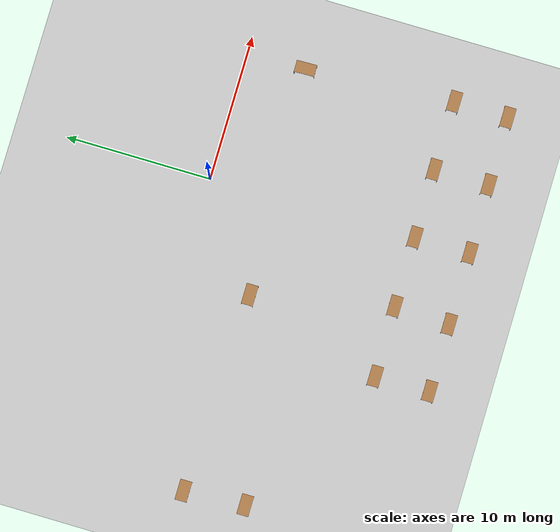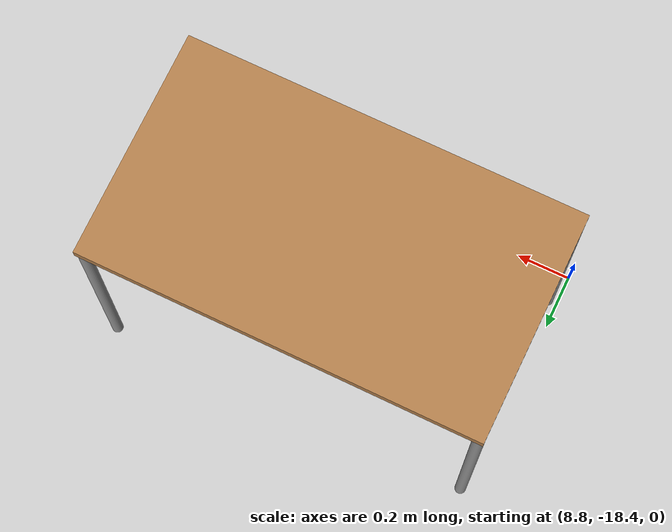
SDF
<sdf version="1.6">
 <world name="default">
  <model name="ground_plane">
   <static>1</static>
   <link name="link">
    <collision name="collision">
     <geometry><plane><normal>0 0 1</normal><size>100 100</size></plane></geometry>
     <surface><friction><ode><mu>100</mu><mu2>50</mu2></ode></friction></surface>
    </collision>
    <visual name="visual">
     <cast_shadows>0</cast_shadows>
     <geometry><plane><normal>0 0 1</normal><size>100 100</size></plane></geometry>
     <material>
      <script><uri>file://media/materials/scripts/gazebo.material</uri><name>Gazebo/Grey</name></script>
     </material>
    </visual>
   </link>
  </model>
  <model name="table">
   <static>0</static>
   <link name="link">
    <collision name="surface">
     <pose>0 0 1 0 -0 0</pose>
     <geometry><box><size>1.5 0.8 0.03</size></box></geometry>
     <surface><friction><ode><mu>0.6</mu><mu2>0.6</mu2></ode></friction></surface>
    </collision>
    <visual name="visual1">
     <pose>0 0 1 0 -0 0</pose>
     <geometry><box><size>1.4 0.8 0.04</size></box></geometry>
     <material>
      <script><uri>file://media/materials/scripts/gazebo.material</uri><name>Gazebo/Wood</name></script>
     </material>
    </visual>
    <collision name="front_left_leg">
     <pose>0.68 0.38 0.5 0 -0 0</pose>
     <geometry><cylinder><radius>0.02</radius><length>1</length></cylinder></geometry>
    </collision>
    <visual name="front_left_leg">
     <pose>0.68 0.38 0.5 0 -0 0</pose>
     <geometry><cylinder><radius>0.02</radius><length>1</length></cylinder></geometry>
     <material>
      <script><uri>file://media/materials/scripts/gazebo.material</uri><name>Gazebo/Grey</name></script>
     </material>
    </visual>
    <collision name="front_right_leg">
     <pose>0.68 -0.38 0.5 0 -0 0</pose>
     <geometry><cylinder><radius>0.02</radius><length>1</length></cylinder></geometry>
    </collision>
    <visual name="front_right_leg">
     <pose>0.68 -0.38 0.5 0 -0 0</pose>
     <geometry><cylinder><radius>0.02</radius><length>1</length></cylinder></geometry>
     <material>
      <script><uri>file://media/materials/scripts/gazebo.material</uri><name>Gazebo/Grey</name></script>
     </material>
    </visual>
    <collision name="back_right_leg">
     <pose>-0.68 -0.38 0.5 0 -0 0</pose>
     <geometry><cylinder><radius>0.02</radius><length>1</length></cylinder></geometry>
    </collision>
    <visual name="back_right_leg">
     <pose>-0.68 -0.38 0.5 0 -0 0</pose>
     <geometry><cylinder><radius>0.02</radius><length>1</length></cylinder></geometry>
     <material>
      <script><uri>file://media/materials/scripts/gazebo.material</uri><name>Gazebo/Grey</name></script>
     </material>
    </visual>
    <collision name="back_left_leg">
     <pose>-0.68 0.38 0.5 0 -0 0</pose>
     <geometry><cylinder><radius>0.02</radius><length>1</length></cylinder></geometry>
    </collision>
    <visual name="back_left_leg">
     <pose>-0.68 0.38 0.5 0 -0 0</pose>
     <geometry><cylinder><radius>0.02</radius><length>1</length></cylinder></geometry>
     <material>
      <script><uri>file://media/materials/scripts/gazebo.material</uri><name>Gazebo/Grey</name></script>
     </material>
    </visual>
    <inertial>
     <inertia><ixx>1</ixx><ixy>0</ixy><ixz>0</ixz><iyy>1</iyy><iyz>0</iyz><izz>1</izz></inertia>
     <mass>1</mass>
    </inertial>
   </link>
   <pose>-9.57196 -14.2734 -1e-06 0 1e-06 0</pose>
  </model>
  <model name="table_clone_clone">
   <static>0</static>
   <link name="link">
    <collision name="surface">
     <pose>0 0 1 0 -0 0</pose>
     <geometry><box><size>1.5 0.8 0.03</size></box></geometry>
     <surface><friction><ode><mu>0.6</mu><mu2>0.6</mu2></ode></friction></surface>
    </collision>
    <visual name="visual1">
     <pose>0 0 1 0 -0 0</pose>
     <geometry><box><size>1.4 0.8 0.04</size></box></geometry>
     <material>
      <script><uri>file://media/materials/scripts/gazebo.material</uri><name>Gazebo/Wood</name></script>
     </material>
    </visual>
    <collision name="front_left_leg">
     <pose>0.68 0.38 0.5 0 -0 0</pose>
     <geometry><cylinder><radius>0.02</radius><length>1</length></cylinder></geometry>
    </collision>
    <visual name="front_left_leg">
     <pose>0.68 0.38 0.5 0 -0 0</pose>
     <geometry><cylinder><radius>0.02</radius><length>1</length></cylinder></geometry>
     <material>
      <script><uri>file://media/materials/scripts/gazebo.material</uri><name>Gazebo/Grey</name></script>
     </material>
    </visual>
    <collision name="front_right_leg">
     <pose>0.68 -0.38 0.5 0 -0 0</pose>
     <geometry><cylinder><radius>0.02</radius><length>1</length></cylinder></geometry>
    </collision>
    <visual name="front_right_leg">
     <pose>0.68 -0.38 0.5 0 -0 0</pose>
     <geometry><cylinder><radius>0.02</radius><length>1</length></cylinder></geometry>
     <material>
      <script><uri>file://media/materials/scripts/gazebo.material</uri><name>Gazebo/Grey</name></script>
     </material>
    </visual>
    <collision name="back_right_leg">
     <pose>-0.68 -0.38 0.5 0 -0 0</pose>
     <geometry><cylinder><radius>0.02</radius><length>1</length></cylinder></geometry>
    </collision>
    <visual name="back_right_leg">
     <pose>-0.68 -0.38 0.5 0 -0 0</pose>
     <geometry><cylinder><radius>0.02</radius><length>1</length></cylinder></geometry>
     <material>
      <script><uri>file://media/materials/scripts/gazebo.material</uri><name>Gazebo/Grey</name></script>
     </material>
    </visual>
    <collision name="back_left_leg">
     <pose>-0.68 0.38 0.5 0 -0 0</pose>
     <geometry><cylinder><radius>0.02</radius><length>1</length></cylinder></geometry>
    </collision>
    <visual name="back_left_leg">
     <pose>-0.68 0.38 0.5 0 -0 0</pose>
     <geometry><cylinder><radius>0.02</radius><length>1</length></cylinder></geometry>
     <material>
      <script><uri>file://media/materials/scripts/gazebo.material</uri><name>Gazebo/Grey</name></script>
     </material>
    </visual>
    <inertial>
     <inertia><ixx>1</ixx><ixy>0</ixy><ixz>0</ixz><iyy>1</iyy><iyz>0</iyz><izz>1</izz></inertia>
     <mass>1</mass>
    </inertial>
   </link>
   <pose>-20.428 -4.24602 -1e-06 0 1e-06 0</pose>
  </model>
  <model name="table_clone_0">
   <static>0</static>
   <link name="link">
    <collision name="surface">
     <pose>0 0 1 0 -0 0</pose>
     <geometry><box><size>1.5 0.8 0.03</size></box></geometry>
     <surface><friction><ode><mu>0.6</mu><mu2>0.6</mu2></ode></friction></surface>
    </collision>
    <visual name="visual1">
     <pose>0 0 1 0 -0 0</pose>
     <geometry><box><size>1.4 0.8 0.04</size></box></geometry>
     <material>
      <script><uri>file://media/materials/scripts/gazebo.material</uri><name>Gazebo/Wood</name></script>
     </material>
    </visual>
    <collision name="front_left_leg">
     <pose>0.68 0.38 0.5 0 -0 0</pose>
     <geometry><cylinder><radius>0.02</radius><length>1</length></cylinder></geometry>
    </collision>
    <visual name="front_left_leg">
     <pose>0.68 0.38 0.5 0 -0 0</pose>
     <geometry><cylinder><radius>0.02</radius><length>1</length></cylinder></geometry>
     <material>
      <script><uri>file://media/materials/scripts/gazebo.material</uri><name>Gazebo/Grey</name></script>
     </material>
    </visual>
    <collision name="front_right_leg">
     <pose>0.68 -0.38 0.5 0 -0 0</pose>
     <geometry><cylinder><radius>0.02</radius><length>1</length></cylinder></geometry>
    </collision>
    <visual name="front_right_leg">
     <pose>0.68 -0.38 0.5 0 -0 0</pose>
     <geometry><cylinder><radius>0.02</radius><length>1</length></cylinder></geometry>
     <material>
      <script><uri>file://media/materials/scripts/gazebo.material</uri><name>Gazebo/Grey</name></script>
     </material>
    </visual>
    <collision name="back_right_leg">
     <pose>-0.68 -0.38 0.5 0 -0 0</pose>
     <geometry><cylinder><radius>0.02</radius><length>1</length></cylinder></geometry>
    </collision>
    <visual name="back_right_leg">
     <pose>-0.68 -0.38 0.5 0 -0 0</pose>
     <geometry><cylinder><radius>0.02</radius><length>1</length></cylinder></geometry>
     <material>
      <script><uri>file://media/materials/scripts/gazebo.material</uri><name>Gazebo/Grey</name></script>
     </material>
    </visual>
    <collision name="back_left_leg">
     <pose>-0.68 0.38 0.5 0 -0 0</pose>
     <geometry><cylinder><radius>0.02</radius><length>1</length></cylinder></geometry>
    </collision>
    <visual name="back_left_leg">
     <pose>-0.68 0.38 0.5 0 -0 0</pose>
     <geometry><cylinder><radius>0.02</radius><length>1</length></cylinder></geometry>
     <material>
      <script><uri>file://media/materials/scripts/gazebo.material</uri><name>Gazebo/Grey</name></script>
     </material>
    </visual>
    <inertial>
     <inertia><ixx>1</ixx><ixy>0</ixy><ixz>0</ixz><iyy>1</iyy><iyz>0</iyz><izz>1</izz></inertia>
     <mass>1</mass>
    </inertial>
   </link>
   <pose>-20.1857 -8.43233 -1e-06 0 1e-06 0</pose>
  </model>
  <model name="table_clone_1">
   <static>0</static>
   <link name="link">
    <collision name="surface">
     <pose>0 0 1 0 -0 0</pose>
     <geometry><box><size>1.5 0.8 0.03</size></box></geometry>
     <surface><friction><ode><mu>0.6</mu><mu2>0.6</mu2></ode></friction></surface>
    </collision>
    <visual name="visual1">
     <pose>0 0 1 0 -0 0</pose>
     <geometry><box><size>1.4 0.8 0.04</size></box></geometry>
     <material>
      <script><uri>file://media/materials/scripts/gazebo.material</uri><name>Gazebo/Wood</name></script>
     </material>
    </visual>
    <collision name="front_left_leg">
     <pose>0.68 0.38 0.5 0 -0 0</pose>
     <geometry><cylinder><radius>0.02</radius><length>1</length></cylinder></geometry>
    </collision>
    <visual name="front_left_leg">
     <pose>0.68 0.38 0.5 0 -0 0</pose>
     <geometry><cylinder><radius>0.02</radius><length>1</length></cylinder></geometry>
     <material>
      <script><uri>file://media/materials/scripts/gazebo.material</uri><name>Gazebo/Grey</name></script>
     </material>
    </visual>
    <collision name="front_right_leg">
     <pose>0.68 -0.38 0.5 0 -0 0</pose>
     <geometry><cylinder><radius>0.02</radius><length>1</length></cylinder></geometry>
    </collision>
    <visual name="front_right_leg">
     <pose>0.68 -0.38 0.5 0 -0 0</pose>
     <geometry><cylinder><radius>0.02</radius><length>1</length></cylinder></geometry>
     <material>
      <script><uri>file://media/materials/scripts/gazebo.material</uri><name>Gazebo/Grey</name></script>
     </material>
    </visual>
    <collision name="back_right_leg">
     <pose>-0.68 -0.38 0.5 0 -0 0</pose>
     <geometry><cylinder><radius>0.02</radius><length>1</length></cylinder></geometry>
    </collision>
    <visual name="back_right_leg">
     <pose>-0.68 -0.38 0.5 0 -0 0</pose>
     <geometry><cylinder><radius>0.02</radius><length>1</length></cylinder></geometry>
     <material>
      <script><uri>file://media/materials/scripts/gazebo.material</uri><name>Gazebo/Grey</name></script>
     </material>
    </visual>
    <collision name="back_left_leg">
     <pose>-0.68 0.38 0.5 0 -0 0</pose>
     <geometry><cylinder><radius>0.02</radius><length>1</length></cylinder></geometry>
    </collision>
    <visual name="back_left_leg">
     <pose>-0.68 0.38 0.5 0 -0 0</pose>
     <geometry><cylinder><radius>0.02</radius><length>1</length></cylinder></geometry>
     <material>
      <script><uri>file://media/materials/scripts/gazebo.material</uri><name>Gazebo/Grey</name></script>
     </material>
    </visual>
    <inertial>
     <inertia><ixx>1</ixx><ixy>0</ixy><ixz>0</ixz><iyy>1</iyy><iyz>0</iyz><izz>1</izz></inertia>
     <mass>1</mass>
    </inertial>
   </link>
   <pose>-9.50655 -18.0093 -1e-06 0 1e-06 0</pose>
  </model>
  <model name="table_clone_2">
   <static>0</static>
   <link name="link">
    <collision name="surface">
     <pose>0 0 1 0 -0 0</pose>
     <geometry><box><size>1.5 0.8 0.03</size></box></geometry>
     <surface><friction><ode><mu>0.6</mu><mu2>0.6</mu2></ode></friction></surface>
    </collision>
    <visual name="visual1">
     <pose>0 0 1 0 -0 0</pose>
     <geometry><box><size>1.4 0.8 0.04</size></box></geometry>
     <material>
      <script><uri>file://media/materials/scripts/gazebo.material</uri><name>Gazebo/Wood</name></script>
     </material>
    </visual>
    <collision name="front_left_leg">
     <pose>0.68 0.38 0.5 0 -0 0</pose>
     <geometry><cylinder><radius>0.02</radius><length>1</length></cylinder></geometry>
    </collision>
    <visual name="front_left_leg">
     <pose>0.68 0.38 0.5 0 -0 0</pose>
     <geometry><cylinder><radius>0.02</radius><length>1</length></cylinder></geometry>
     <material>
      <script><uri>file://media/materials/scripts/gazebo.material</uri><name>Gazebo/Grey</name></script>
     </material>
    </visual>
    <collision name="front_right_leg">
     <pose>0.68 -0.38 0.5 0 -0 0</pose>
     <geometry><cylinder><radius>0.02</radius><length>1</length></cylinder></geometry>
    </collision>
    <visual name="front_right_leg">
     <pose>0.68 -0.38 0.5 0 -0 0</pose>
     <geometry><cylinder><radius>0.02</radius><length>1</length></cylinder></geometry>
     <material>
      <script><uri>file://media/materials/scripts/gazebo.material</uri><name>Gazebo/Grey</name></script>
     </material>
    </visual>
    <collision name="back_right_leg">
     <pose>-0.68 -0.38 0.5 0 -0 0</pose>
     <geometry><cylinder><radius>0.02</radius><length>1</length></cylinder></geometry>
    </collision>
    <visual name="back_right_leg">
     <pose>-0.68 -0.38 0.5 0 -0 0</pose>
     <geometry><cylinder><radius>0.02</radius><length>1</length></cylinder></geometry>
     <material>
      <script><uri>file://media/materials/scripts/gazebo.material</uri><name>Gazebo/Grey</name></script>
     </material>
    </visual>
    <collision name="back_left_leg">
     <pose>-0.68 0.38 0.5 0 -0 0</pose>
     <geometry><cylinder><radius>0.02</radius><length>1</length></cylinder></geometry>
    </collision>
    <visual name="back_left_leg">
     <pose>-0.68 0.38 0.5 0 -0 0</pose>
     <geometry><cylinder><radius>0.02</radius><length>1</length></cylinder></geometry>
     <material>
      <script><uri>file://media/materials/scripts/gazebo.material</uri><name>Gazebo/Grey</name></script>
     </material>
    </visual>
    <inertial>
     <inertia><ixx>1</ixx><ixy>0</ixy><ixz>0</ixz><iyy>1</iyy><iyz>0</iyz><izz>1</izz></inertia>
     <mass>1</mass>
    </inertial>
   </link>
   <pose>-4.73326 -14.2156 -1e-06 0 1e-06 0</pose>
  </model>
  <model name="table_clone_3">
   <static>0</static>
   <link name="link">
    <collision name="surface">
     <pose>0 0 1 0 -0 0</pose>
     <geometry><box><size>1.5 0.8 0.03</size></box></geometry>
     <surface><friction><ode><mu>0.6</mu><mu2>0.6</mu2></ode></friction></surface>
    </collision>
    <visual name="visual1">
     <pose>0 0 1 0 -0 0</pose>
     <geometry><box><size>1.4 0.8 0.04</size></box></geometry>
     <material>
      <script><uri>file://media/materials/scripts/gazebo.material</uri><name>Gazebo/Wood</name></script>
     </material>
    </visual>
    <collision name="front_left_leg">
     <pose>0.68 0.38 0.5 0 -0 0</pose>
     <geometry><cylinder><radius>0.02</radius><length>1</length></cylinder></geometry>
    </collision>
    <visual name="front_left_leg">
     <pose>0.68 0.38 0.5 0 -0 0</pose>
     <geometry><cylinder><radius>0.02</radius><length>1</length></cylinder></geometry>
     <material>
      <script><uri>file://media/materials/scripts/gazebo.material</uri><name>Gazebo/Grey</name></script>
     </material>
    </visual>
    <collision name="front_right_leg">
     <pose>0.68 -0.38 0.5 0 -0 0</pose>
     <geometry><cylinder><radius>0.02</radius><length>1</length></cylinder></geometry>
    </collision>
    <visual name="front_right_leg">
     <pose>0.68 -0.38 0.5 0 -0 0</pose>
     <geometry><cylinder><radius>0.02</radius><length>1</length></cylinder></geometry>
     <material>
      <script><uri>file://media/materials/scripts/gazebo.material</uri><name>Gazebo/Grey</name></script>
     </material>
    </visual>
    <collision name="back_right_leg">
     <pose>-0.68 -0.38 0.5 0 -0 0</pose>
     <geometry><cylinder><radius>0.02</radius><length>1</length></cylinder></geometry>
    </collision>
    <visual name="back_right_leg">
     <pose>-0.68 -0.38 0.5 0 -0 0</pose>
     <geometry><cylinder><radius>0.02</radius><length>1</length></cylinder></geometry>
     <material>
      <script><uri>file://media/materials/scripts/gazebo.material</uri><name>Gazebo/Grey</name></script>
     </material>
    </visual>
    <collision name="back_left_leg">
     <pose>-0.68 0.38 0.5 0 -0 0</pose>
     <geometry><cylinder><radius>0.02</radius><length>1</length></cylinder></geometry>
    </collision>
    <visual name="back_left_leg">
     <pose>-0.68 0.38 0.5 0 -0 0</pose>
     <geometry><cylinder><radius>0.02</radius><length>1</length></cylinder></geometry>
     <material>
      <script><uri>file://media/materials/scripts/gazebo.material</uri><name>Gazebo/Grey</name></script>
     </material>
    </visual>
    <inertial>
     <inertia><ixx>1</ixx><ixy>0</ixy><ixz>0</ixz><iyy>1</iyy><iyz>0</iyz><izz>1</izz></inertia>
     <mass>1</mass>
    </inertial>
   </link>
   <pose>-4.8651 -18.0156 -1e-06 0 1e-06 0</pose>
  </model>
  <model name="table_clone_4">
   <static>0</static>
   <link name="link">
    <collision name="surface">
     <pose>0 0 1 0 -0 0</pose>
     <geometry><box><size>1.5 0.8 0.03</size></box></geometry>
     <surface><friction><ode><mu>0.6</mu><mu2>0.6</mu2></ode></friction></surface>
    </collision>
    <visual name="visual1">
     <pose>0 0 1 0 -0 0</pose>
     <geometry><box><size>1.4 0.8 0.04</size></box></geometry>
     <material>
      <script><uri>file://media/materials/scripts/gazebo.material</uri><name>Gazebo/Wood</name></script>
     </material>
    </visual>
    <collision name="front_left_leg">
     <pose>0.68 0.38 0.5 0 -0 0</pose>
     <geometry><cylinder><radius>0.02</radius><length>1</length></cylinder></geometry>
    </collision>
    <visual name="front_left_leg">
     <pose>0.68 0.38 0.5 0 -0 0</pose>
     <geometry><cylinder><radius>0.02</radius><length>1</length></cylinder></geometry>
     <material>
      <script><uri>file://media/materials/scripts/gazebo.material</uri><name>Gazebo/Grey</name></script>
     </material>
    </visual>
    <collision name="front_right_leg">
     <pose>0.68 -0.38 0.5 0 -0 0</pose>
     <geometry><cylinder><radius>0.02</radius><length>1</length></cylinder></geometry>
    </collision>
    <visual name="front_right_leg">
     <pose>0.68 -0.38 0.5 0 -0 0</pose>
     <geometry><cylinder><radius>0.02</radius><length>1</length></cylinder></geometry>
     <material>
      <script><uri>file://media/materials/scripts/gazebo.material</uri><name>Gazebo/Grey</name></script>
     </material>
    </visual>
    <collision name="back_right_leg">
     <pose>-0.68 -0.38 0.5 0 -0 0</pose>
     <geometry><cylinder><radius>0.02</radius><length>1</length></cylinder></geometry>
    </collision>
    <visual name="back_right_leg">
     <pose>-0.68 -0.38 0.5 0 -0 0</pose>
     <geometry><cylinder><radius>0.02</radius><length>1</length></cylinder></geometry>
     <material>
      <script><uri>file://media/materials/scripts/gazebo.material</uri><name>Gazebo/Grey</name></script>
     </material>
    </visual>
    <collision name="back_left_leg">
     <pose>-0.68 0.38 0.5 0 -0 0</pose>
     <geometry><cylinder><radius>0.02</radius><length>1</length></cylinder></geometry>
    </collision>
    <visual name="back_left_leg">
     <pose>-0.68 0.38 0.5 0 -0 0</pose>
     <geometry><cylinder><radius>0.02</radius><length>1</length></cylinder></geometry>
     <material>
      <script><uri>file://media/materials/scripts/gazebo.material</uri><name>Gazebo/Grey</name></script>
     </material>
    </visual>
    <inertial>
     <inertia><ixx>1</ixx><ixy>0</ixy><ixz>0</ixz><iyy>1</iyy><iyz>0</iyz><izz>1</izz></inertia>
     <mass>1</mass>
    </inertial>
   </link>
   <pose>0.087077 -18.0097 -1e-06 0 1e-06 0</pose>
  </model>
  <model name="table_clone_5">
   <static>0</static>
   <link name="link">
    <collision name="surface">
     <pose>0 0 1 0 -0 0</pose>
     <geometry><box><size>1.5 0.8 0.03</size></box></geometry>
     <surface><friction><ode><mu>0.6</mu><mu2>0.6</mu2></ode></friction></surface>
    </collision>
    <visual name="visual1">
     <pose>0 0 1 0 -0 0</pose>
     <geometry><box><size>1.4 0.8 0.04</size></box></geometry>
     <material>
      <script><uri>file://media/materials/scripts/gazebo.material</uri><name>Gazebo/Wood</name></script>
     </material>
    </visual>
    <collision name="front_left_leg">
     <pose>0.68 0.38 0.5 0 -0 0</pose>
     <geometry><cylinder><radius>0.02</radius><length>1</length></cylinder></geometry>
    </collision>
    <visual name="front_left_leg">
     <pose>0.68 0.38 0.5 0 -0 0</pose>
     <geometry><cylinder><radius>0.02</radius><length>1</length></cylinder></geometry>
     <material>
      <script><uri>file://media/materials/scripts/gazebo.material</uri><name>Gazebo/Grey</name></script>
     </material>
    </visual>
    <collision name="front_right_leg">
     <pose>0.68 -0.38 0.5 0 -0 0</pose>
     <geometry><cylinder><radius>0.02</radius><length>1</length></cylinder></geometry>
    </collision>
    <visual name="front_right_leg">
     <pose>0.68 -0.38 0.5 0 -0 0</pose>
     <geometry><cylinder><radius>0.02</radius><length>1</length></cylinder></geometry>
     <material>
      <script><uri>file://media/materials/scripts/gazebo.material</uri><name>Gazebo/Grey</name></script>
     </material>
    </visual>
    <collision name="back_right_leg">
     <pose>-0.68 -0.38 0.5 0 -0 0</pose>
     <geometry><cylinder><radius>0.02</radius><length>1</length></cylinder></geometry>
    </collision>
    <visual name="back_right_leg">
     <pose>-0.68 -0.38 0.5 0 -0 0</pose>
     <geometry><cylinder><radius>0.02</radius><length>1</length></cylinder></geometry>
     <material>
      <script><uri>file://media/materials/scripts/gazebo.material</uri><name>Gazebo/Grey</name></script>
     </material>
    </visual>
    <collision name="back_left_leg">
     <pose>-0.68 0.38 0.5 0 -0 0</pose>
     <geometry><cylinder><radius>0.02</radius><length>1</length></cylinder></geometry>
    </collision>
    <visual name="back_left_leg">
     <pose>-0.68 0.38 0.5 0 -0 0</pose>
     <geometry><cylinder><radius>0.02</radius><length>1</length></cylinder></geometry>
     <material>
      <script><uri>file://media/materials/scripts/gazebo.material</uri><name>Gazebo/Grey</name></script>
     </material>
    </visual>
    <inertial>
     <inertia><ixx>1</ixx><ixy>0</ixy><ixz>0</ixz><iyy>1</iyy><iyz>0</iyz><izz>1</izz></inertia>
     <mass>1</mass>
    </inertial>
   </link>
   <pose>0.06345 -14.2089 -1e-06 0 1e-06 0</pose>
  </model>
  <model name="table_clone_6">
   <static>0</static>
   <link name="link">
    <collision name="surface">
     <pose>0 0 1 0 -0 0</pose>
     <geometry><box><size>1.5 0.8 0.03</size></box></geometry>
     <surface><friction><ode><mu>0.6</mu><mu2>0.6</mu2></ode></friction></surface>
    </collision>
    <visual name="visual1">
     <pose>0 0 1 0 -0 0</pose>
     <geometry><box><size>1.4 0.8 0.04</size></box></geometry>
     <material>
      <script><uri>file://media/materials/scripts/gazebo.material</uri><name>Gazebo/Wood</name></script>
     </material>
    </visual>
    <collision name="front_left_leg">
     <pose>0.68 0.38 0.5 0 -0 0</pose>
     <geometry><cylinder><radius>0.02</radius><length>1</length></cylinder></geometry>
    </collision>
    <visual name="front_left_leg">
     <pose>0.68 0.38 0.5 0 -0 0</pose>
     <geometry><cylinder><radius>0.02</radius><length>1</length></cylinder></geometry>
     <material>
      <script><uri>file://media/materials/scripts/gazebo.material</uri><name>Gazebo/Grey</name></script>
     </material>
    </visual>
    <collision name="front_right_leg">
     <pose>0.68 -0.38 0.5 0 -0 0</pose>
     <geometry><cylinder><radius>0.02</radius><length>1</length></cylinder></geometry>
    </collision>
    <visual name="front_right_leg">
     <pose>0.68 -0.38 0.5 0 -0 0</pose>
     <geometry><cylinder><radius>0.02</radius><length>1</length></cylinder></geometry>
     <material>
      <script><uri>file://media/materials/scripts/gazebo.material</uri><name>Gazebo/Grey</name></script>
     </material>
    </visual>
    <collision name="back_right_leg">
     <pose>-0.68 -0.38 0.5 0 -0 0</pose>
     <geometry><cylinder><radius>0.02</radius><length>1</length></cylinder></geometry>
    </collision>
    <visual name="back_right_leg">
     <pose>-0.68 -0.38 0.5 0 -0 0</pose>
     <geometry><cylinder><radius>0.02</radius><length>1</length></cylinder></geometry>
     <material>
      <script><uri>file://media/materials/scripts/gazebo.material</uri><name>Gazebo/Grey</name></script>
     </material>
    </visual>
    <collision name="back_left_leg">
     <pose>-0.68 0.38 0.5 0 -0 0</pose>
     <geometry><cylinder><radius>0.02</radius><length>1</length></cylinder></geometry>
    </collision>
    <visual name="back_left_leg">
     <pose>-0.68 0.38 0.5 0 -0 0</pose>
     <geometry><cylinder><radius>0.02</radius><length>1</length></cylinder></geometry>
     <material>
      <script><uri>file://media/materials/scripts/gazebo.material</uri><name>Gazebo/Grey</name></script>
     </material>
    </visual>
    <inertial>
     <inertia><ixx>1</ixx><ixy>0</ixy><ixz>0</ixz><iyy>1</iyy><iyz>0</iyz><izz>1</izz></inertia>
     <mass>1</mass>
    </inertial>
   </link>
   <pose>4.77489 -14.1737 -1e-06 0 1e-06 0</pose>
  </model>
  <model name="table_clone_7">
   <static>0</static>
   <link name="link">
    <collision name="surface">
     <pose>0 0 1 0 -0 0</pose>
     <geometry><box><size>1.5 0.8 0.03</size></box></geometry>
     <surface><friction><ode><mu>0.6</mu><mu2>0.6</mu2></ode></friction></surface>
    </collision>
    <visual name="visual1">
     <pose>0 0 1 0 -0 0</pose>
     <geometry><box><size>1.4 0.8 0.04</size></box></geometry>
     <material>
      <script><uri>file://media/materials/scripts/gazebo.material</uri><name>Gazebo/Wood</name></script>
     </material>
    </visual>
    <collision name="front_left_leg">
     <pose>0.68 0.38 0.5 0 -0 0</pose>
     <geometry><cylinder><radius>0.02</radius><length>1</length></cylinder></geometry>
    </collision>
    <visual name="front_left_leg">
     <pose>0.68 0.38 0.5 0 -0 0</pose>
     <geometry><cylinder><radius>0.02</radius><length>1</length></cylinder></geometry>
     <material>
      <script><uri>file://media/materials/scripts/gazebo.material</uri><name>Gazebo/Grey</name></script>
     </material>
    </visual>
    <collision name="front_right_leg">
     <pose>0.68 -0.38 0.5 0 -0 0</pose>
     <geometry><cylinder><radius>0.02</radius><length>1</length></cylinder></geometry>
    </collision>
    <visual name="front_right_leg">
     <pose>0.68 -0.38 0.5 0 -0 0</pose>
     <geometry><cylinder><radius>0.02</radius><length>1</length></cylinder></geometry>
     <material>
      <script><uri>file://media/materials/scripts/gazebo.material</uri><name>Gazebo/Grey</name></script>
     </material>
    </visual>
    <collision name="back_right_leg">
     <pose>-0.68 -0.38 0.5 0 -0 0</pose>
     <geometry><cylinder><radius>0.02</radius><length>1</length></cylinder></geometry>
    </collision>
    <visual name="back_right_leg">
     <pose>-0.68 -0.38 0.5 0 -0 0</pose>
     <geometry><cylinder><radius>0.02</radius><length>1</length></cylinder></geometry>
     <material>
      <script><uri>file://media/materials/scripts/gazebo.material</uri><name>Gazebo/Grey</name></script>
     </material>
    </visual>
    <collision name="back_left_leg">
     <pose>-0.68 0.38 0.5 0 -0 0</pose>
     <geometry><cylinder><radius>0.02</radius><length>1</length></cylinder></geometry>
    </collision>
    <visual name="back_left_leg">
     <pose>-0.68 0.38 0.5 0 -0 0</pose>
     <geometry><cylinder><radius>0.02</radius><length>1</length></cylinder></geometry>
     <material>
      <script><uri>file://media/materials/scripts/gazebo.material</uri><name>Gazebo/Grey</name></script>
     </material>
    </visual>
    <inertial>
     <inertia><ixx>1</ixx><ixy>0</ixy><ixz>0</ixz><iyy>1</iyy><iyz>0</iyz><izz>1</izz></inertia>
     <mass>1</mass>
    </inertial>
   </link>
   <pose>4.81531 -17.9469 -1e-06 0 1e-06 0</pose>
  </model>
  <model name="table_clone_8">
   <static>0</static>
   <link name="link">
    <collision name="surface">
     <pose>0 0 1 0 -0 0</pose>
     <geometry><box><size>1.5 0.8 0.03</size></box></geometry>
     <surface><friction><ode><mu>0.6</mu><mu2>0.6</mu2></ode></friction></surface>
    </collision>
    <visual name="visual1">
     <pose>0 0 1 0 -0 0</pose>
     <geometry><box><size>1.4 0.8 0.04</size></box></geometry>
     <material>
      <script><uri>file://media/materials/scripts/gazebo.material</uri><name>Gazebo/Wood</name></script>
     </material>
    </visual>
    <collision name="front_left_leg">
     <pose>0.68 0.38 0.5 0 -0 0</pose>
     <geometry><cylinder><radius>0.02</radius><length>1</length></cylinder></geometry>
    </collision>
    <visual name="front_left_leg">
     <pose>0.68 0.38 0.5 0 -0 0</pose>
     <geometry><cylinder><radius>0.02</radius><length>1</length></cylinder></geometry>
     <material>
      <script><uri>file://media/materials/scripts/gazebo.material</uri><name>Gazebo/Grey</name></script>
     </material>
    </visual>
    <collision name="front_right_leg">
     <pose>0.68 -0.38 0.5 0 -0 0</pose>
     <geometry><cylinder><radius>0.02</radius><length>1</length></cylinder></geometry>
    </collision>
    <visual name="front_right_leg">
     <pose>0.68 -0.38 0.5 0 -0 0</pose>
     <geometry><cylinder><radius>0.02</radius><length>1</length></cylinder></geometry>
     <material>
      <script><uri>file://media/materials/scripts/gazebo.material</uri><name>Gazebo/Grey</name></script>
     </material>
    </visual>
    <collision name="back_right_leg">
     <pose>-0.68 -0.38 0.5 0 -0 0</pose>
     <geometry><cylinder><radius>0.02</radius><length>1</length></cylinder></geometry>
    </collision>
    <visual name="back_right_leg">
     <pose>-0.68 -0.38 0.5 0 -0 0</pose>
     <geometry><cylinder><radius>0.02</radius><length>1</length></cylinder></geometry>
     <material>
      <script><uri>file://media/materials/scripts/gazebo.material</uri><name>Gazebo/Grey</name></script>
     </material>
    </visual>
    <collision name="back_left_leg">
     <pose>-0.68 0.38 0.5 0 -0 0</pose>
     <geometry><cylinder><radius>0.02</radius><length>1</length></cylinder></geometry>
    </collision>
    <visual name="back_left_leg">
     <pose>-0.68 0.38 0.5 0 -0 0</pose>
     <geometry><cylinder><radius>0.02</radius><length>1</length></cylinder></geometry>
     <material>
      <script><uri>file://media/materials/scripts/gazebo.material</uri><name>Gazebo/Grey</name></script>
     </material>
    </visual>
    <inertial>
     <inertia><ixx>1</ixx><ixy>0</ixy><ixz>0</ixz><iyy>1</iyy><iyz>0</iyz><izz>1</izz></inertia>
     <mass>1</mass>
    </inertial>
   </link>
   <pose>9.54269 -14.1955 -1e-06 0 1e-06 0</pose>
  </model>
  <model name="table_clone_9">
   <static>0</static>
   <link name="link">
    <collision name="surface">
     <pose>0 0 1 0 -0 0</pose>
     <geometry><box><size>1.5 0.8 0.03</size></box></geometry>
     <surface><friction><ode><mu>0.6</mu><mu2>0.6</mu2></ode></friction></surface>
    </collision>
    <visual name="visual1">
     <pose>0 0 1 0 -0 0</pose>
     <geometry><box><size>1.4 0.8 0.04</size></box></geometry>
     <material>
      <script><uri>file://media/materials/scripts/gazebo.material</uri><name>Gazebo/Wood</name></script>
     </material>
    </visual>
    <collision name="front_left_leg">
     <pose>0.68 0.38 0.5 0 -0 0</pose>
     <geometry><cylinder><radius>0.02</radius><length>1</length></cylinder></geometry>
    </collision>
    <visual name="front_left_leg">
     <pose>0.68 0.38 0.5 0 -0 0</pose>
     <geometry><cylinder><radius>0.02</radius><length>1</length></cylinder></geometry>
     <material>
      <script><uri>file://media/materials/scripts/gazebo.material</uri><name>Gazebo/Grey</name></script>
     </material>
    </visual>
    <collision name="front_right_leg">
     <pose>0.68 -0.38 0.5 0 -0 0</pose>
     <geometry><cylinder><radius>0.02</radius><length>1</length></cylinder></geometry>
    </collision>
    <visual name="front_right_leg">
     <pose>0.68 -0.38 0.5 0 -0 0</pose>
     <geometry><cylinder><radius>0.02</radius><length>1</length></cylinder></geometry>
     <material>
      <script><uri>file://media/materials/scripts/gazebo.material</uri><name>Gazebo/Grey</name></script>
     </material>
    </visual>
    <collision name="back_right_leg">
     <pose>-0.68 -0.38 0.5 0 -0 0</pose>
     <geometry><cylinder><radius>0.02</radius><length>1</length></cylinder></geometry>
    </collision>
    <visual name="back_right_leg">
     <pose>-0.68 -0.38 0.5 0 -0 0</pose>
     <geometry><cylinder><radius>0.02</radius><length>1</length></cylinder></geometry>
     <material>
      <script><uri>file://media/materials/scripts/gazebo.material</uri><name>Gazebo/Grey</name></script>
     </material>
    </visual>
    <collision name="back_left_leg">
     <pose>-0.68 0.38 0.5 0 -0 0</pose>
     <geometry><cylinder><radius>0.02</radius><length>1</length></cylinder></geometry>
    </collision>
    <visual name="back_left_leg">
     <pose>-0.68 0.38 0.5 0 -0 0</pose>
     <geometry><cylinder><radius>0.02</radius><length>1</length></cylinder></geometry>
     <material>
      <script><uri>file://media/materials/scripts/gazebo.material</uri><name>Gazebo/Grey</name></script>
     </material>
    </visual>
    <inertial>
     <inertia><ixx>1</ixx><ixy>0</ixy><ixz>0</ixz><iyy>1</iyy><iyz>0</iyz><izz>1</izz></inertia>
     <mass>1</mass>
    </inertial>
   </link>
   <pose>9.5164 -17.9126 -1e-06 0 1e-06 0</pose>
  </model>
  <model name="table_clone_10">
   <static>0</static>
   <link name="link">
    <collision name="surface">
     <pose>0 0 1 0 -0 0</pose>
     <geometry><box><size>1.5 0.8 0.03</size></box></geometry>
     <surface><friction><ode><mu>0.6</mu><mu2>0.6</mu2></ode></friction></surface>
    </collision>
    <visual name="visual1">
     <pose>0 0 1 0 -0 0</pose>
     <geometry><box><size>1.4 0.8 0.04</size></box></geometry>
     <material>
      <script><uri>file://media/materials/scripts/gazebo.material</uri><name>Gazebo/Wood</name></script>
     </material>
    </visual>
    <collision name="front_left_leg">
     <pose>0.68 0.38 0.5 0 -0 0</pose>
     <geometry><cylinder><radius>0.02</radius><length>1</length></cylinder></geometry>
    </collision>
    <visual name="front_left_leg">
     <pose>0.68 0.38 0.5 0 -0 0</pose>
     <geometry><cylinder><radius>0.02</radius><length>1</length></cylinder></geometry>
     <material>
      <script><uri>file://media/materials/scripts/gazebo.material</uri><name>Gazebo/Grey</name></script>
     </material>
    </visual>
    <collision name="front_right_leg">
     <pose>0.68 -0.38 0.5 0 -0 0</pose>
     <geometry><cylinder><radius>0.02</radius><length>1</length></cylinder></geometry>
    </collision>
    <visual name="front_right_leg">
     <pose>0.68 -0.38 0.5 0 -0 0</pose>
     <geometry><cylinder><radius>0.02</radius><length>1</length></cylinder></geometry>
     <material>
      <script><uri>file://media/materials/scripts/gazebo.material</uri><name>Gazebo/Grey</name></script>
     </material>
    </visual>
    <collision name="back_right_leg">
     <pose>-0.68 -0.38 0.5 0 -0 0</pose>
     <geometry><cylinder><radius>0.02</radius><length>1</length></cylinder></geometry>
    </collision>
    <visual name="back_right_leg">
     <pose>-0.68 -0.38 0.5 0 -0 0</pose>
     <geometry><cylinder><radius>0.02</radius><length>1</length></cylinder></geometry>
     <material>
      <script><uri>file://media/materials/scripts/gazebo.material</uri><name>Gazebo/Grey</name></script>
     </material>
    </visual>
    <collision name="back_left_leg">
     <pose>-0.68 0.38 0.5 0 -0 0</pose>
     <geometry><cylinder><radius>0.02</radius><length>1</length></cylinder></geometry>
    </collision>
    <visual name="back_left_leg">
     <pose>-0.68 0.38 0.5 0 -0 0</pose>
     <geometry><cylinder><radius>0.02</radius><length>1</length></cylinder></geometry>
     <material>
      <script><uri>file://media/materials/scripts/gazebo.material</uri><name>Gazebo/Grey</name></script>
     </material>
    </visual>
    <inertial>
     <inertia><ixx>1</ixx><ixy>0</ixy><ixz>0</ixz><iyy>1</iyy><iyz>0</iyz><izz>1</izz></inertia>
     <mass>1</mass>
    </inertial>
   </link>
   <pose>8.85638 -4.03043 -4e-06 0 0 -1.5501</pose>
  </model>
  <model name="table_clone_10_clone">
   <static>0</static>
   <link name="link">
    <collision name="surface">
     <pose>0 0 1 0 -0 0</pose>
     <geometry><box><size>1.5 0.8 0.03</size></box></geometry>
     <surface><friction><ode><mu>0.6</mu><mu2>0.6</mu2></ode></friction></surface>
    </collision>
    <visual name="visual1">
     <pose>0 0 1 0 -0 0</pose>
     <geometry><box><size>1.4 0.8 0.04</size></box></geometry>
     <material>
      <script><uri>file://media/materials/scripts/gazebo.material</uri><name>Gazebo/Wood</name></script>
     </material>
    </visual>
    <collision name="front_left_leg">
     <pose>0.68 0.38 0.5 0 -0 0</pose>
     <geometry><cylinder><radius>0.02</radius><length>1</length></cylinder></geometry>
    </collision>
    <visual name="front_left_leg">
     <pose>0.68 0.38 0.5 0 -0 0</pose>
     <geometry><cylinder><radius>0.02</radius><length>1</length></cylinder></geometry>
     <material>
      <script><uri>file://media/materials/scripts/gazebo.material</uri><name>Gazebo/Grey</name></script>
     </material>
    </visual>
    <collision name="front_right_leg">
     <pose>0.68 -0.38 0.5 0 -0 0</pose>
     <geometry><cylinder><radius>0.02</radius><length>1</length></cylinder></geometry>
    </collision>
    <visual name="front_right_leg">
     <pose>0.68 -0.38 0.5 0 -0 0</pose>
     <geometry><cylinder><radius>0.02</radius><length>1</length></cylinder></geometry>
     <material>
      <script><uri>file://media/materials/scripts/gazebo.material</uri><name>Gazebo/Grey</name></script>
     </material>
    </visual>
    <collision name="back_right_leg">
     <pose>-0.68 -0.38 0.5 0 -0 0</pose>
     <geometry><cylinder><radius>0.02</radius><length>1</length></cylinder></geometry>
    </collision>
    <visual name="back_right_leg">
     <pose>-0.68 -0.38 0.5 0 -0 0</pose>
     <geometry><cylinder><radius>0.02</radius><length>1</length></cylinder></geometry>
     <material>
      <script><uri>file://media/materials/scripts/gazebo.material</uri><name>Gazebo/Grey</name></script>
     </material>
    </visual>
    <collision name="back_left_leg">
     <pose>-0.68 0.38 0.5 0 -0 0</pose>
     <geometry><cylinder><radius>0.02</radius><length>1</length></cylinder></geometry>
    </collision>
    <visual name="back_left_leg">
     <pose>-0.68 0.38 0.5 0 -0 0</pose>
     <geometry><cylinder><radius>0.02</radius><length>1</length></cylinder></geometry>
     <material>
      <script><uri>file://media/materials/scripts/gazebo.material</uri><name>Gazebo/Grey</name></script>
     </material>
    </visual>
    <inertial>
     <inertia><ixx>1</ixx><ixy>0</ixy><ixz>0</ixz><iyy>1</iyy><iyz>0</iyz><izz>1</izz></inertia>
     <mass>1</mass>
    </inertial>
   </link>
   <pose>-6.74047 -4.76189 -1e-06 0 1e-06 0</pose>
  </model>
 </world>
</sdf>
